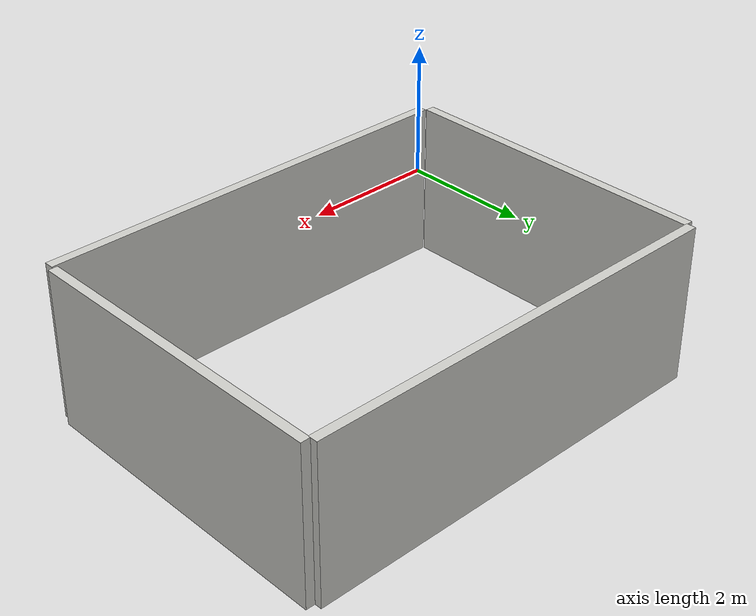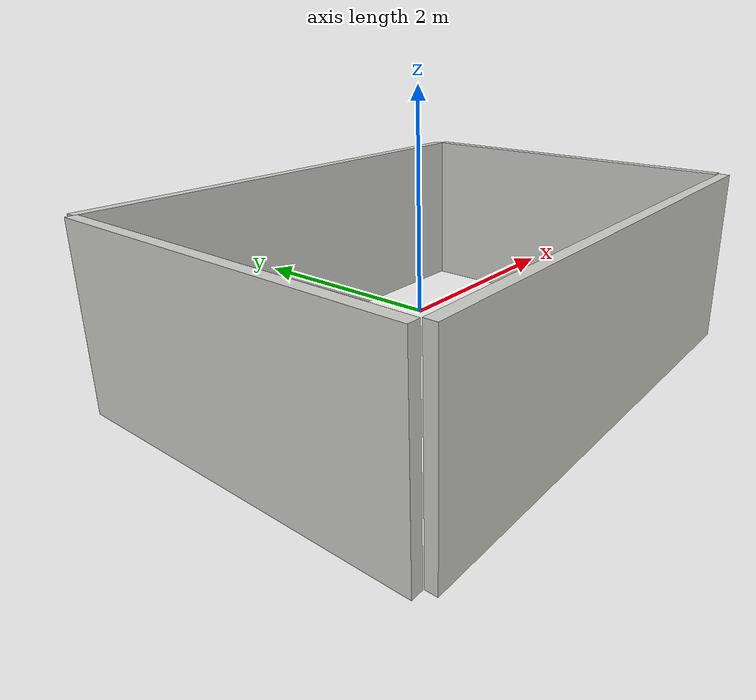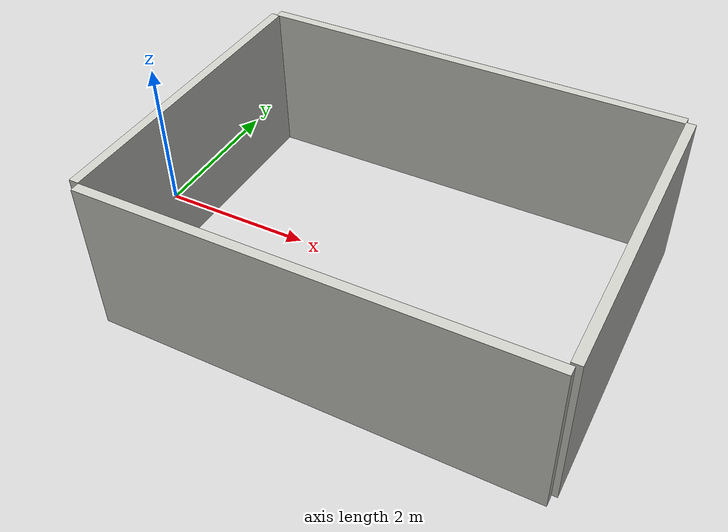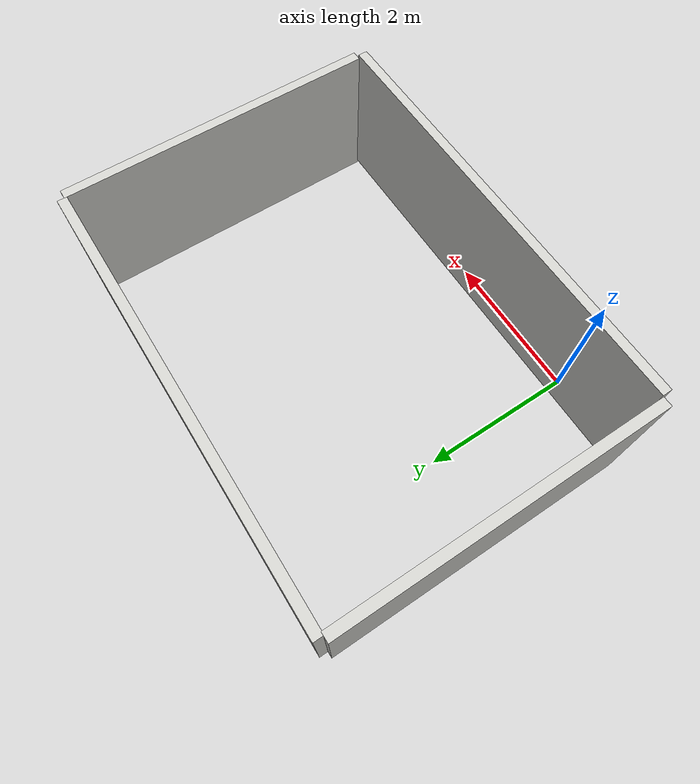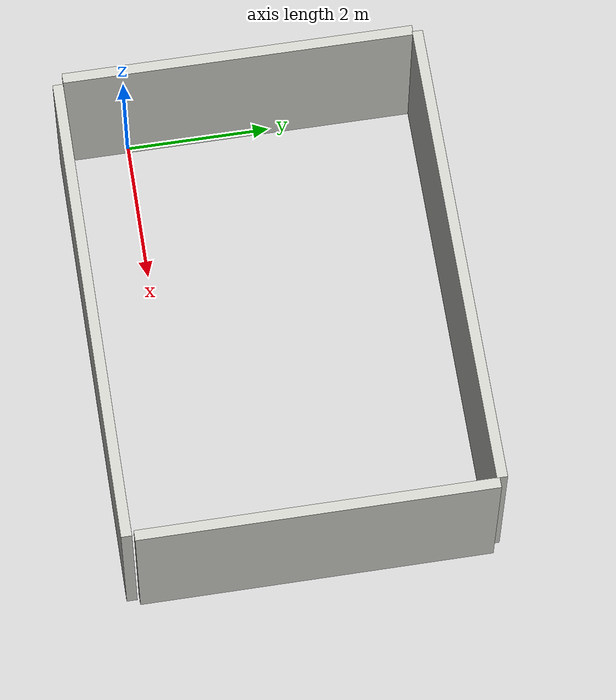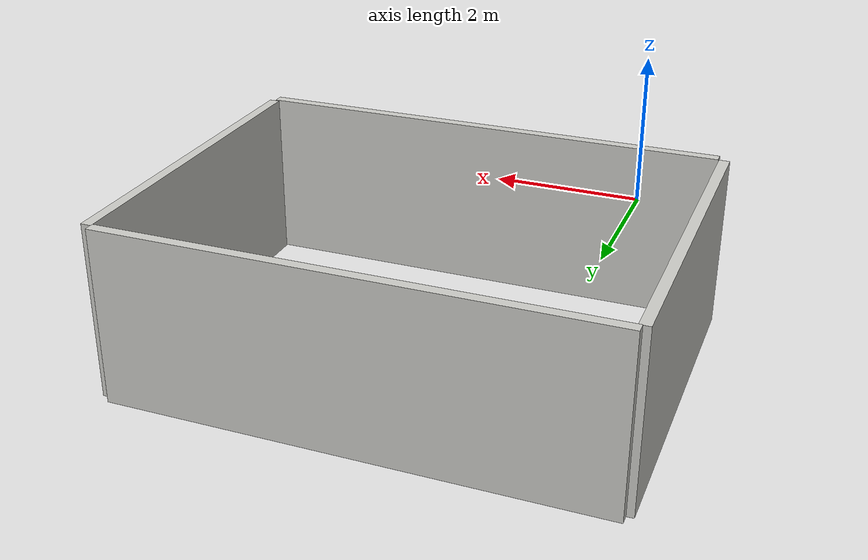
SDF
<sdf version="1.7">
 <world name="default">
  <light name="sun" type="directional">
   <pose>0 0 10 0 -0 0</pose>
   <diffuse>0.8 0.8 0.8 1</diffuse>
   <specular>0.2 0.2 0.2 1</specular>
   <attenuation>
    <range>1000</range>
    <constant>0.9</constant>
    <linear>0.01</linear>
    <quadratic>0.001</quadratic>
   </attenuation>
   <direction>-0.5 0.1 -0.9</direction>
   <spot><inner_angle>0</inner_angle><outer_angle>0</outer_angle><falloff>0</falloff></spot>
  </light>
  <gravity>0 0 -9.8</gravity>
  <magnetic_field>6e-06 2.3e-05 -4.2e-05</magnetic_field>
  <atmosphere type="adiabatic"/>
  <physics type="ode">
   <max_step_size>0.001</max_step_size>
   <real_time_factor>1</real_time_factor>
   <real_time_update_rate>1000</real_time_update_rate>
  </physics>
  <scene><ambient>0.4 0.4 0.4 1</ambient><background>0.7 0.7 0.7 1</background><shadows>1</shadows></scene>
  <spherical_coordinates>
   <surface_model>EARTH_WGS84</surface_model>
   <latitude_deg>0</latitude_deg>
   <longitude_deg>0</longitude_deg>
   <elevation>0</elevation>
   <heading_deg>0</heading_deg>
  </spherical_coordinates>
  <model name="arena_wall">
   <link name="Wall_0">
    <pose>0.199855 -2.60704 0 0 -0 0</pose>
    <visual name="Wall_0_Visual">
     <pose>0 0 1.25 0 -0 0</pose>
     <geometry><box><size>6.88 0.15 2.5</size></box></geometry>
     <material>
      <script><uri>file://media/materials/scripts/gazebo.material</uri><name>Gazebo/CeilingTiled</name></script>
      <ambient>1 1 1 1</ambient>
      <shader type="pixel"/>
     </material>
     <meta><layer>0</layer></meta>
    </visual>
    <collision name="Wall_0_Collision">
     <pose>0 0 1.25 0 -0 0</pose>
     <geometry><box><size>6.88 0.15 2.5</size></box></geometry>
     <surface>
      <friction>
       <ode><mu>1</mu><mu2>1</mu2><fdir1>0 0 0</fdir1><slip1>0</slip1><slip2>0</slip2></ode>
       <torsional>
        <coefficient>1</coefficient>
        <patch_radius>0</patch_radius>
        <surface_radius>0</surface_radius>
        <use_patch_radius>1</use_patch_radius>
        <ode><slip>0</slip></ode>
       </torsional>
      </friction>
      <bounce><restitution_coefficient>0</restitution_coefficient><threshold>1e+06</threshold></bounce>
      <contact>
       <collide_without_contact>0</collide_without_contact>
       <collide_without_contact_bitmask>1</collide_without_contact_bitmask>
       <collide_bitmask>1</collide_bitmask>
       <ode>
        <soft_cfm>0</soft_cfm>
        <soft_erp>0.2</soft_erp>
        <kp>1e+13</kp>
        <kd>1</kd>
        <max_vel>0.01</max_vel>
        <min_depth>0</min_depth>
       </ode>
       <bullet>
        <split_impulse>1</split_impulse>
        <split_impulse_penetration_threshold>-0.01</split_impulse_penetration_threshold>
        <soft_cfm>0</soft_cfm>
        <soft_erp>0.2</soft_erp>
        <kp>1e+13</kp>
        <kd>1</kd>
       </bullet>
      </contact>
     </surface>
    </collision>
   </link>
   <link name="Wall_1">
    <pose>3.64387 1e-06 0 0 -0 1.5708</pose>
    <visual name="Wall_1_Visual">
     <pose>0 0 1.25 0 -0 0</pose>
     <geometry><box><size>5 0.15 2.5</size></box></geometry>
     <material>
      <script><uri>file://media/materials/scripts/gazebo.material</uri><name>Gazebo/CeilingTiled</name></script>
      <ambient>1 1 1 1</ambient>
      <shader type="pixel"/>
     </material>
     <meta><layer>0</layer></meta>
    </visual>
    <collision name="Wall_1_Collision">
     <pose>0 0 1.25 0 -0 0</pose>
     <geometry><box><size>5 0.15 2.5</size></box></geometry>
     <surface>
      <friction>
       <ode><mu>1</mu><mu2>1</mu2><fdir1>0 0 0</fdir1><slip1>0</slip1><slip2>0</slip2></ode>
       <torsional>
        <coefficient>1</coefficient>
        <patch_radius>0</patch_radius>
        <surface_radius>0</surface_radius>
        <use_patch_radius>1</use_patch_radius>
        <ode><slip>0</slip></ode>
       </torsional>
      </friction>
      <bounce><restitution_coefficient>0</restitution_coefficient><threshold>1e+06</threshold></bounce>
      <contact>
       <collide_without_contact>0</collide_without_contact>
       <collide_without_contact_bitmask>1</collide_without_contact_bitmask>
       <collide_bitmask>1</collide_bitmask>
       <ode>
        <soft_cfm>0</soft_cfm>
        <soft_erp>0.2</soft_erp>
        <kp>1e+13</kp>
        <kd>1</kd>
        <max_vel>0.01</max_vel>
        <min_depth>0</min_depth>
       </ode>
       <bullet>
        <split_impulse>1</split_impulse>
        <split_impulse_penetration_threshold>-0.01</split_impulse_penetration_threshold>
        <soft_cfm>0</soft_cfm>
        <soft_erp>0.2</soft_erp>
        <kp>1e+13</kp>
        <kd>1</kd>
       </bullet>
      </contact>
     </surface>
    </collision>
   </link>
   <link name="Wall_3">
    <pose>-3.32884 -0.028043 0 0 -0 1.5708</pose>
    <visual name="Wall_3_Visual">
     <pose>0 0 1.25 0 -0 0</pose>
     <geometry><box><size>5 0.15 2.5</size></box></geometry>
     <material>
      <script><uri>file://media/materials/scripts/gazebo.material</uri><name>Gazebo/CeilingTiled</name></script>
      <ambient>1 1 1 1</ambient>
      <shader type="pixel"/>
     </material>
     <meta><layer>0</layer></meta>
    </visual>
    <collision name="Wall_3_Collision">
     <pose>0 0 1.25 0 -0 0</pose>
     <geometry><box><size>5 0.15 2.5</size></box></geometry>
     <surface>
      <friction>
       <ode><mu>1</mu><mu2>1</mu2><fdir1>0 0 0</fdir1><slip1>0</slip1><slip2>0</slip2></ode>
       <torsional>
        <coefficient>1</coefficient>
        <patch_radius>0</patch_radius>
        <surface_radius>0</surface_radius>
        <use_patch_radius>1</use_patch_radius>
        <ode><slip>0</slip></ode>
       </torsional>
      </friction>
      <bounce><restitution_coefficient>0</restitution_coefficient><threshold>1e+06</threshold></bounce>
      <contact>
       <collide_without_contact>0</collide_without_contact>
       <collide_without_contact_bitmask>1</collide_without_contact_bitmask>
       <collide_bitmask>1</collide_bitmask>
       <ode>
        <soft_cfm>0</soft_cfm>
        <soft_erp>0.2</soft_erp>
        <kp>1e+13</kp>
        <kd>1</kd>
        <max_vel>0.01</max_vel>
        <min_depth>0</min_depth>
       </ode>
       <bullet>
        <split_impulse>1</split_impulse>
        <split_impulse_penetration_threshold>-0.01</split_impulse_penetration_threshold>
        <soft_cfm>0</soft_cfm>
        <soft_erp>0.2</soft_erp>
        <kp>1e+13</kp>
        <kd>1</kd>
       </bullet>
      </contact>
     </surface>
    </collision>
   </link>
   <link name="Wall_4">
    <pose>0.134724 2.53443 0 0 -0 0</pose>
    <visual name="Wall_4_Visual">
     <pose>0 0 1.25 0 -0 0</pose>
     <geometry><box><size>6.88 0.15 2.5</size></box></geometry>
     <material>
      <script><uri>file://media/materials/scripts/gazebo.material</uri><name>Gazebo/CeilingTiled</name></script>
      <ambient>1 1 1 1</ambient>
      <shader type="pixel"/>
     </material>
     <meta><layer>0</layer></meta>
    </visual>
    <collision name="Wall_4_Collision">
     <pose>0 0 1.25 0 -0 0</pose>
     <geometry><box><size>6.88 0.15 2.5</size></box></geometry>
     <surface>
      <friction>
       <ode><mu>1</mu><mu2>1</mu2><fdir1>0 0 0</fdir1><slip1>0</slip1><slip2>0</slip2></ode>
       <torsional>
        <coefficient>1</coefficient>
        <patch_radius>0</patch_radius>
        <surface_radius>0</surface_radius>
        <use_patch_radius>1</use_patch_radius>
        <ode><slip>0</slip></ode>
       </torsional>
      </friction>
      <bounce><restitution_coefficient>0</restitution_coefficient><threshold>1e+06</threshold></bounce>
      <contact>
       <collide_without_contact>0</collide_without_contact>
       <collide_without_contact_bitmask>1</collide_without_contact_bitmask>
       <collide_bitmask>1</collide_bitmask>
       <ode>
        <soft_cfm>0</soft_cfm>
        <soft_erp>0.2</soft_erp>
        <kp>1e+13</kp>
        <kd>1</kd>
        <max_vel>0.01</max_vel>
        <min_depth>0</min_depth>
       </ode>
       <bullet>
        <split_impulse>1</split_impulse>
        <split_impulse_penetration_threshold>-0.01</split_impulse_penetration_threshold>
        <soft_cfm>0</soft_cfm>
        <soft_erp>0.2</soft_erp>
        <kp>1e+13</kp>
        <kd>1</kd>
       </bullet>
      </contact>
     </surface>
    </collision>
   </link>
   <static>1</static>
   <pose>2.3109 1.756210 -2.059454 0 -0 0</pose>
  </model>
 </world>
</sdf>
